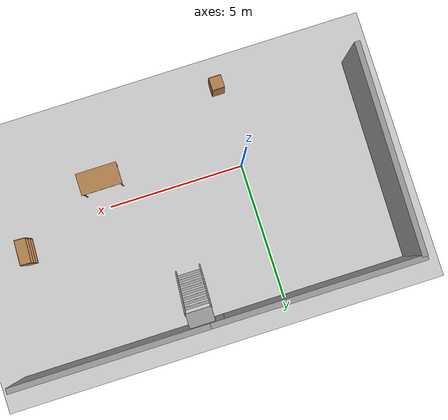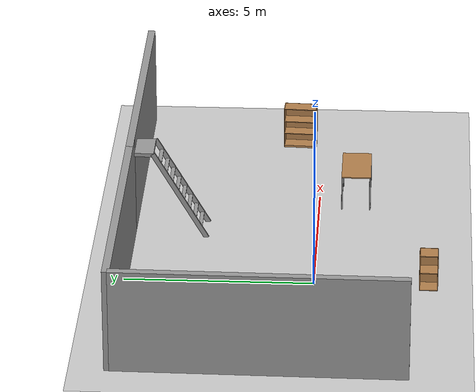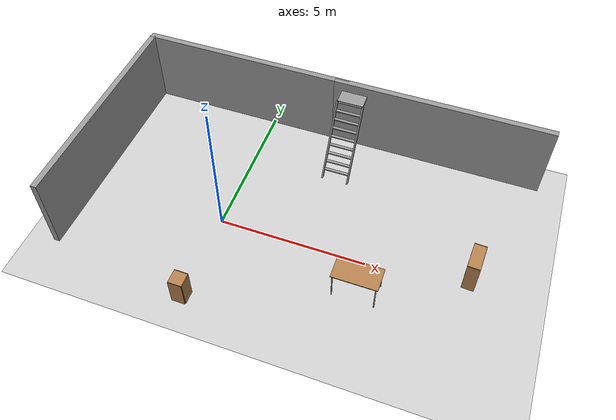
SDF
<sdf version="1.4">
 <world name="default">
  <light name="sun" type="directional">
   <pose>0 0 10 0 -0 0</pose>
   <diffuse>0.8 0.8 0.8 1</diffuse>
   <specular>0.2 0.2 0.2 1</specular>
   <attenuation>
    <range>1000</range>
    <constant>0.9</constant>
    <linear>0.01</linear>
    <quadratic>0.001</quadratic>
   </attenuation>
   <direction>-0.5 0.1 -0.9</direction>
  </light>
  <model name="ground_plane">
   <static>1</static>
   <link name="link">
    <collision name="collision">
     <geometry><plane><normal>0 0 1</normal><size>100 100</size></plane></geometry>
     <surface><friction><ode><mu>100</mu><mu2>50</mu2></ode></friction></surface>
    </collision>
    <visual name="visual">
     <cast_shadows>0</cast_shadows>
     <geometry><plane><normal>0 0 1</normal><size>100 100</size></plane></geometry>
     <material>
      <script><uri>file://media/materials/scripts/gazebo.material</uri><name>Gazebo/Grey</name></script>
     </material>
    </visual>
    <velocity_decay><linear>0</linear><angular>0</angular></velocity_decay>
   </link>
  </model>
  <physics type="ode">
   <max_step_size>0.001</max_step_size>
   <real_time_factor>1</real_time_factor>
   <real_time_update_rate>1000</real_time_update_rate>
   <gravity>0 0 -9.8</gravity>
  </physics>
  <scene><ambient>0.4 0.4 0.4 1</ambient><background>0.7 0.7 0.7 1</background><shadows>1</shadows></scene>
  <spherical_coordinates>
   <surface_model>EARTH_WGS84</surface_model>
   <latitude_deg>0</latitude_deg>
   <longitude_deg>0</longitude_deg>
   <elevation>0</elevation>
   <heading_deg>0</heading_deg>
  </spherical_coordinates>
  <model name="grey_wall">
   <static>1</static>
   <link name="link">
    <pose>0 0 1.4 0 -0 0</pose>
    <collision name="collision"><geometry><box><size>7.5 0.2 2.8</size></box></geometry></collision>
    <visual name="visual">
     <cast_shadows>0</cast_shadows>
     <geometry><box><size>7.5 0.2 2.8</size></box></geometry>
     <material>
      <script>
       <uri>model://grey_wall/materials/scripts</uri>
       <uri>model://grey_wall/materials/textures</uri>
       <name>vrc/grey_wall</name>
      </script>
     </material>
    </visual>
    <velocity_decay><linear>0</linear><angular>0</angular></velocity_decay>
   </link>
   <pose>-1 5 0 0 -0 0</pose>
  </model>
  <model name="grey_wall_0">
   <static>1</static>
   <link name="link">
    <pose>0 0 1.4 0 -0 0</pose>
    <collision name="collision"><geometry><box><size>7.5 0.2 2.8</size></box></geometry></collision>
    <visual name="visual">
     <cast_shadows>0</cast_shadows>
     <geometry><box><size>7.5 0.2 2.8</size></box></geometry>
     <material>
      <script>
       <uri>model://grey_wall/materials/scripts</uri>
       <uri>model://grey_wall/materials/textures</uri>
       <name>vrc/grey_wall</name>
      </script>
     </material>
    </visual>
    <velocity_decay><linear>0</linear><angular>0</angular></velocity_decay>
   </link>
   <pose>6 5 0 0 -0 0</pose>
  </model>
  <model name="grey_wall_1">
   <static>1</static>
   <link name="link">
    <pose>0 0 1.4 0 -0 0</pose>
    <collision name="collision"><geometry><box><size>7.5 0.2 2.8</size></box></geometry></collision>
    <visual name="visual">
     <cast_shadows>0</cast_shadows>
     <geometry><box><size>7.5 0.2 2.8</size></box></geometry>
     <material>
      <script>
       <uri>model://grey_wall/materials/scripts</uri>
       <uri>model://grey_wall/materials/textures</uri>
       <name>vrc/grey_wall</name>
      </script>
     </material>
    </visual>
    <velocity_decay><linear>0</linear><angular>0</angular></velocity_decay>
   </link>
   <pose>-4.7169 1.21848 0 0 -0 1.55822</pose>
  </model>
  <model name="table">
   <static>1</static>
   <link name="link">
    <collision name="surface">
     <pose>0 0 1 0 -0 0</pose>
     <geometry><box><size>1.5 0.8 0.03</size></box></geometry>
     <surface><friction><ode><mu>0.6</mu><mu2>0.6</mu2></ode></friction></surface>
    </collision>
    <visual name="visual1">
     <pose>0 0 1 0 -0 0</pose>
     <geometry><box><size>1.5 0.8 0.03</size></box></geometry>
     <material>
      <script><uri>file://media/materials/scripts/gazebo.material</uri><name>Gazebo/Wood</name></script>
     </material>
    </visual>
    <collision name="front_left_leg">
     <pose>0.68 0.38 0.5 0 -0 0</pose>
     <geometry><cylinder><radius>0.02</radius><length>1</length></cylinder></geometry>
    </collision>
    <visual name="front_left_leg">
     <pose>0.68 0.38 0.5 0 -0 0</pose>
     <geometry><cylinder><radius>0.02</radius><length>1</length></cylinder></geometry>
     <material>
      <script><uri>file://media/materials/scripts/gazebo.material</uri><name>Gazebo/Grey</name></script>
     </material>
    </visual>
    <collision name="front_right_leg">
     <pose>0.68 -0.38 0.5 0 -0 0</pose>
     <geometry><cylinder><radius>0.02</radius><length>1</length></cylinder></geometry>
    </collision>
    <visual name="front_right_leg">
     <pose>0.68 -0.38 0.5 0 -0 0</pose>
     <geometry><cylinder><radius>0.02</radius><length>1</length></cylinder></geometry>
     <material>
      <script><uri>file://media/materials/scripts/gazebo.material</uri><name>Gazebo/Grey</name></script>
     </material>
    </visual>
    <collision name="back_right_leg">
     <pose>-0.68 -0.38 0.5 0 -0 0</pose>
     <geometry><cylinder><radius>0.02</radius><length>1</length></cylinder></geometry>
    </collision>
    <visual name="back_right_leg">
     <pose>-0.68 -0.38 0.5 0 -0 0</pose>
     <geometry><cylinder><radius>0.02</radius><length>1</length></cylinder></geometry>
     <material>
      <script><uri>file://media/materials/scripts/gazebo.material</uri><name>Gazebo/Grey</name></script>
     </material>
    </visual>
    <collision name="back_left_leg">
     <pose>-0.68 0.38 0.5 0 -0 0</pose>
     <geometry><cylinder><radius>0.02</radius><length>1</length></cylinder></geometry>
    </collision>
    <visual name="back_left_leg">
     <pose>-0.68 0.38 0.5 0 -0 0</pose>
     <geometry><cylinder><radius>0.02</radius><length>1</length></cylinder></geometry>
     <material>
      <script><uri>file://media/materials/scripts/gazebo.material</uri><name>Gazebo/Grey</name></script>
     </material>
    </visual>
    <velocity_decay><linear>0</linear><angular>0</angular></velocity_decay>
   </link>
   <pose>5 -1 0 0 -0 0</pose>
  </model>
  <model name="cabinet">
   <static>1</static>
   <link name="cabinet_bottom_plate">
    <inertial>
     <pose>0 0 -1 0 -0 0</pose>
     <inertia><ixx>2.05</ixx><ixy>0</ixy><ixz>0</ixz><iyy>2.05</iyy><iyz>0</iyz><izz>2.05</izz></inertia>
     <mass>25</mass>
    </inertial>
    <collision name="cabinet_bottom_plate_geom">
     <pose>0 0 0.01 0 -0 0</pose>
     <geometry><box><size>0.45 0.45 0.02</size></box></geometry>
    </collision>
    <visual name="cabinet_bottom_plate_geom_visual">
     <pose>0 0 0.01 0 -0 0</pose>
     <geometry><box><size>0.45 0.45 0.02</size></box></geometry>
     <material>
      <script><uri>file://media/materials/scripts/gazebo.material</uri><name>Gazebo/Wood</name></script>
     </material>
    </visual>
    <collision name="cabinet_bottom_plate_geom_cabinet_back_plate">
     <pose>0.235 0 0.51 0 -0 0</pose>
     <geometry><box><size>0.02 0.45 1.02</size></box></geometry>
    </collision>
    <visual name="cabinet_bottom_plate_geom_cabinet_back_plate_visual">
     <pose>0.235 0 0.51 0 -0 0</pose>
     <geometry><box><size>0.02 0.45 1.02</size></box></geometry>
     <material>
      <script><uri>file://media/materials/scripts/gazebo.material</uri><name>Gazebo/Wood</name></script>
     </material>
    </visual>
    <collision name="cabinet_bottom_plate_geom_cabinet_left_plate">
     <pose>0 0.235 0.51 0 -0 0</pose>
     <geometry><box><size>0.45 0.02 1.02</size></box></geometry>
    </collision>
    <visual name="cabinet_bottom_plate_geom_cabinet_left_plate_visual">
     <pose>0 0.235 0.51 0 -0 0</pose>
     <geometry><box><size>0.45 0.02 1.02</size></box></geometry>
     <material>
      <script><uri>file://media/materials/scripts/gazebo.material</uri><name>Gazebo/Wood</name></script>
     </material>
    </visual>
    <collision name="cabinet_bottom_plate_geom_cabinet_middle_plate">
     <pose>0 0 0.51 0 -0 0</pose>
     <geometry><box><size>0.45 0.45 0.02</size></box></geometry>
    </collision>
    <visual name="cabinet_bottom_plate_geom_cabinet_middle_plate_visual">
     <pose>0 0 0.51 0 -0 0</pose>
     <geometry><box><size>0.45 0.45 0.02</size></box></geometry>
     <material>
      <script><uri>file://media/materials/scripts/gazebo.material</uri><name>Gazebo/Wood</name></script>
     </material>
    </visual>
    <collision name="cabinet_bottom_plate_geom_cabinet_right_plate">
     <pose>0 -0.235 0.51 0 -0 0</pose>
     <geometry><box><size>0.45 0.02 1.02</size></box></geometry>
    </collision>
    <visual name="cabinet_bottom_plate_geom_cabinet_right_plate_visual">
     <pose>0 -0.235 0.51 0 -0 0</pose>
     <geometry><box><size>0.45 0.02 1.02</size></box></geometry>
     <material>
      <script><uri>file://media/materials/scripts/gazebo.material</uri><name>Gazebo/Wood</name></script>
     </material>
    </visual>
    <collision name="cabinet_bottom_plate_geom_cabinet_top_plate">
     <pose>0 0 1.01 0 -0 0</pose>
     <geometry><box><size>0.45 0.45 0.02</size></box></geometry>
    </collision>
    <visual name="cabinet_bottom_plate_geom_cabinet_top_plate_visual">
     <pose>0 0 1.01 0 -0 0</pose>
     <geometry><box><size>0.45 0.45 0.02</size></box></geometry>
     <material>
      <script><uri>file://media/materials/scripts/gazebo.material</uri><name>Gazebo/Wood</name></script>
     </material>
    </visual>
    <velocity_decay><linear>0</linear><angular>0</angular></velocity_decay>
   </link>
   <pose>0 -3 0 0 -0 0</pose>
  </model>
  <model name="ladder_60deg_0rails">
   <static>1</static>
   <link name="step0">
    <pose>0 0.15396 0.266667 0 -0 0</pose>
    <inertial>
     <mass>9.75482</mass>
     <inertia>
      <ixx>0.00957124</ixx>
      <iyy>0.65963</iyy>
      <izz>0.666842</izz>
      <ixy>0</ixy>
      <ixz>0</ixz>
      <iyz>0</iyz>
     </inertia>
    </inertial>
    <collision name="collision"><geometry><box><size>0.9 0.1016 0.0381</size></box></geometry></collision>
    <visual name="visual">
     <geometry><box><size>0.9 0.1016 0.0381</size></box></geometry>
     <material>
      <script><uri>file://media/materials/scripts/gazebo.material</uri><name>Gazebo/Grey</name></script>
     </material>
    </visual>
    <velocity_decay><linear>0</linear><angular>0</angular></velocity_decay>
   </link>
   <link name="step1">
    <pose>0 0.30792 0.533333 0 -0 0</pose>
    <inertial>
     <mass>9.75482</mass>
     <inertia>
      <ixx>0.00957124</ixx>
      <iyy>0.65963</iyy>
      <izz>0.666842</izz>
      <ixy>0</ixy>
      <ixz>0</ixz>
      <iyz>0</iyz>
     </inertia>
    </inertial>
    <collision name="collision"><geometry><box><size>0.9 0.1016 0.0381</size></box></geometry></collision>
    <visual name="visual">
     <geometry><box><size>0.9 0.1016 0.0381</size></box></geometry>
     <material>
      <script><uri>file://media/materials/scripts/gazebo.material</uri><name>Gazebo/Grey</name></script>
     </material>
    </visual>
    <velocity_decay><linear>0</linear><angular>0</angular></velocity_decay>
   </link>
   <link name="step2">
    <pose>0 0.46188 0.8 0 -0 0</pose>
    <inertial>
     <mass>9.75482</mass>
     <inertia>
      <ixx>0.00957124</ixx>
      <iyy>0.65963</iyy>
      <izz>0.666842</izz>
      <ixy>0</ixy>
      <ixz>0</ixz>
      <iyz>0</iyz>
     </inertia>
    </inertial>
    <collision name="collision"><geometry><box><size>0.9 0.1016 0.0381</size></box></geometry></collision>
    <visual name="visual">
     <geometry><box><size>0.9 0.1016 0.0381</size></box></geometry>
     <material>
      <script><uri>file://media/materials/scripts/gazebo.material</uri><name>Gazebo/Grey</name></script>
     </material>
    </visual>
    <velocity_decay><linear>0</linear><angular>0</angular></velocity_decay>
   </link>
   <link name="step3">
    <pose>0 0.61584 1.06667 0 -0 0</pose>
    <inertial>
     <mass>9.75482</mass>
     <inertia>
      <ixx>0.00957124</ixx>
      <iyy>0.65963</iyy>
      <izz>0.666842</izz>
      <ixy>0</ixy>
      <ixz>0</ixz>
      <iyz>0</iyz>
     </inertia>
    </inertial>
    <collision name="collision"><geometry><box><size>0.9 0.1016 0.0381</size></box></geometry></collision>
    <visual name="visual">
     <geometry><box><size>0.9 0.1016 0.0381</size></box></geometry>
     <material>
      <script><uri>file://media/materials/scripts/gazebo.material</uri><name>Gazebo/Grey</name></script>
     </material>
    </visual>
    <velocity_decay><linear>0</linear><angular>0</angular></velocity_decay>
   </link>
   <link name="step4">
    <pose>0 0.7698 1.33333 0 -0 0</pose>
    <inertial>
     <mass>9.75482</mass>
     <inertia>
      <ixx>0.00957124</ixx>
      <iyy>0.65963</iyy>
      <izz>0.666842</izz>
      <ixy>0</ixy>
      <ixz>0</ixz>
      <iyz>0</iyz>
     </inertia>
    </inertial>
    <collision name="collision"><geometry><box><size>0.9 0.1016 0.0381</size></box></geometry></collision>
    <visual name="visual">
     <geometry><box><size>0.9 0.1016 0.0381</size></box></geometry>
     <material>
      <script><uri>file://media/materials/scripts/gazebo.material</uri><name>Gazebo/Grey</name></script>
     </material>
    </visual>
    <velocity_decay><linear>0</linear><angular>0</angular></velocity_decay>
   </link>
   <link name="step5">
    <pose>0 0.92376 1.6 0 -0 0</pose>
    <inertial>
     <mass>9.75482</mass>
     <inertia>
      <ixx>0.00957124</ixx>
      <iyy>0.65963</iyy>
      <izz>0.666842</izz>
      <ixy>0</ixy>
      <ixz>0</ixz>
      <iyz>0</iyz>
     </inertia>
    </inertial>
    <collision name="collision"><geometry><box><size>0.9 0.1016 0.0381</size></box></geometry></collision>
    <visual name="visual">
     <geometry><box><size>0.9 0.1016 0.0381</size></box></geometry>
     <material>
      <script><uri>file://media/materials/scripts/gazebo.material</uri><name>Gazebo/Grey</name></script>
     </material>
    </visual>
    <velocity_decay><linear>0</linear><angular>0</angular></velocity_decay>
   </link>
   <link name="step6">
    <pose>0 1.07772 1.86667 0 -0 0</pose>
    <inertial>
     <mass>9.75482</mass>
     <inertia>
      <ixx>0.00957124</ixx>
      <iyy>0.65963</iyy>
      <izz>0.666842</izz>
      <ixy>0</ixy>
      <ixz>0</ixz>
      <iyz>0</iyz>
     </inertia>
    </inertial>
    <collision name="collision"><geometry><box><size>0.9 0.1016 0.0381</size></box></geometry></collision>
    <visual name="visual">
     <geometry><box><size>0.9 0.1016 0.0381</size></box></geometry>
     <material>
      <script><uri>file://media/materials/scripts/gazebo.material</uri><name>Gazebo/Grey</name></script>
     </material>
    </visual>
    <velocity_decay><linear>0</linear><angular>0</angular></velocity_decay>
   </link>
   <link name="step7">
    <pose>0 1.23168 2.13333 0 -0 0</pose>
    <inertial>
     <mass>9.75482</mass>
     <inertia>
      <ixx>0.00957124</ixx>
      <iyy>0.65963</iyy>
      <izz>0.666842</izz>
      <ixy>0</ixy>
      <ixz>0</ixz>
      <iyz>0</iyz>
     </inertia>
    </inertial>
    <collision name="collision"><geometry><box><size>0.9 0.1016 0.0381</size></box></geometry></collision>
    <visual name="visual">
     <geometry><box><size>0.9 0.1016 0.0381</size></box></geometry>
     <material>
      <script><uri>file://media/materials/scripts/gazebo.material</uri><name>Gazebo/Grey</name></script>
     </material>
    </visual>
    <velocity_decay><linear>0</linear><angular>0</angular></velocity_decay>
   </link>
   <link name="landing">
    <pose>0 1.68564 2.4 0 -0 0</pose>
    <inertial>
     <mass>57.6072</mass>
     <inertia><ixx>1.73518</ixx><iyy>3.89545</iyy><izz>5.6167</izz><ixy>0</ixy><ixz>0</ixz><iyz>0</iyz></inertia>
    </inertial>
    <collision name="collision"><geometry><box><size>0.9 0.6 0.1016</size></box></geometry></collision>
    <visual name="visual">
     <geometry><box><size>0.9 0.6 0.1016</size></box></geometry>
     <material>
      <script><uri>file://media/materials/scripts/gazebo.material</uri><name>Gazebo/Grey</name></script>
     </material>
    </visual>
    <velocity_decay><linear>0</linear><angular>0</angular></velocity_decay>
   </link>
   <link name="left_side_wall">
    <pose>-0.45 0.69282 1.2 1.0472 -0 0</pose>
    <collision name="collision"><geometry><box><size>0.0508 2.85128 0.13</size></box></geometry></collision>
    <visual name="visual">
     <geometry><box><size>0.0508 2.85128 0.13</size></box></geometry>
     <material>
      <script><uri>file://media/materials/scripts/gazebo.material</uri><name>Gazebo/Grey</name></script>
     </material>
    </visual>
    <velocity_decay><linear>0</linear><angular>0</angular></velocity_decay>
   </link>
   <link name="right_side_wall">
    <pose>0.45 0.69282 1.2 1.0472 -0 0</pose>
    <collision name="collision"><geometry><box><size>0.0508 2.85128 0.13</size></box></geometry></collision>
    <visual name="visual">
     <geometry><box><size>0.0508 2.85128 0.13</size></box></geometry>
     <material>
      <script><uri>file://media/materials/scripts/gazebo.material</uri><name>Gazebo/Grey</name></script>
     </material>
    </visual>
    <velocity_decay><linear>0</linear><angular>0</angular></velocity_decay>
   </link>
   <pose>3 3 0 0 -0 0</pose>
  </model>
  <model name="bookshelf">
   <static>1</static>
   <link name="link">
    <inertial><mass>1</mass></inertial>
    <collision name="back">
     <pose>0 0.005 0.6 0 -0 0</pose>
     <geometry><box><size>0.9 0.01 1.2</size></box></geometry>
    </collision>
    <visual name="visual1">
     <pose>0 0.005 0.6 0 -0 0</pose>
     <geometry><box><size>0.9 0.01 1.2</size></box></geometry>
     <material>
      <script><uri>file://media/materials/scripts/gazebo.material</uri><name>Gazebo/Wood</name></script>
     </material>
    </visual>
    <collision name="left_side">
     <pose>0.45 -0.195 0.6 0 -0 0</pose>
     <geometry><box><size>0.02 0.4 1.2</size></box></geometry>
    </collision>
    <visual name="visual2">
     <pose>0.45 -0.195 0.6 0 -0 0</pose>
     <geometry><box><size>0.02 0.4 1.2</size></box></geometry>
     <material>
      <script><uri>file://media/materials/scripts/gazebo.material</uri><name>Gazebo/Wood</name></script>
     </material>
    </visual>
    <collision name="right_side">
     <pose>-0.45 -0.195 0.6 0 -0 0</pose>
     <geometry><box><size>0.02 0.4 1.2</size></box></geometry>
    </collision>
    <visual name="visual3">
     <pose>-0.45 -0.195 0.6 0 -0 0</pose>
     <geometry><box><size>0.02 0.4 1.2</size></box></geometry>
     <material>
      <script><uri>file://media/materials/scripts/gazebo.material</uri><name>Gazebo/Wood</name></script>
     </material>
    </visual>
    <collision name="bottom">
     <pose>0 -0.195 0.03 0 -0 0</pose>
     <geometry><box><size>0.88 0.4 0.06</size></box></geometry>
    </collision>
    <visual name="visual4">
     <pose>0 -0.195 0.03 0 -0 0</pose>
     <geometry><box><size>0.88 0.4 0.06</size></box></geometry>
     <material>
      <script><uri>file://media/materials/scripts/gazebo.material</uri><name>Gazebo/Wood</name></script>
     </material>
    </visual>
    <collision name="top">
     <pose>0 -0.195 1.19 0 -0 0</pose>
     <geometry><box><size>0.88 0.4 0.02</size></box></geometry>
    </collision>
    <visual name="visual5">
     <pose>0 -0.195 1.19 0 -0 0</pose>
     <geometry><box><size>0.88 0.4 0.02</size></box></geometry>
     <material>
      <script><uri>file://media/materials/scripts/gazebo.material</uri><name>Gazebo/Wood</name></script>
     </material>
    </visual>
    <collision name="low_shelf">
     <pose>0 -0.195 0.43 0 -0 0</pose>
     <geometry><box><size>0.88 0.4 0.02</size></box></geometry>
    </collision>
    <visual name="visual6">
     <pose>0 -0.195 0.43 0 -0 0</pose>
     <geometry><box><size>0.88 0.4 0.02</size></box></geometry>
     <material>
      <script><uri>file://media/materials/scripts/gazebo.material</uri><name>Gazebo/Wood</name></script>
     </material>
    </visual>
    <collision name="high_shelf">
     <pose>0 -0.195 0.8 0 -0 0</pose>
     <geometry><box><size>0.88 0.4 0.02</size></box></geometry>
    </collision>
    <visual name="visual7">
     <pose>0 -0.195 0.8 0 -0 0</pose>
     <geometry><box><size>0.88 0.4 0.02</size></box></geometry>
     <material>
      <script><uri>file://media/materials/scripts/gazebo.material</uri><name>Gazebo/Wood</name></script>
     </material>
    </visual>
    <velocity_decay><linear>0</linear><angular>0</angular></velocity_decay>
   </link>
   <pose>8.45978 0.653578 0.007602 0 0 -1.62034</pose>
  </model>
 </world>
</sdf>
